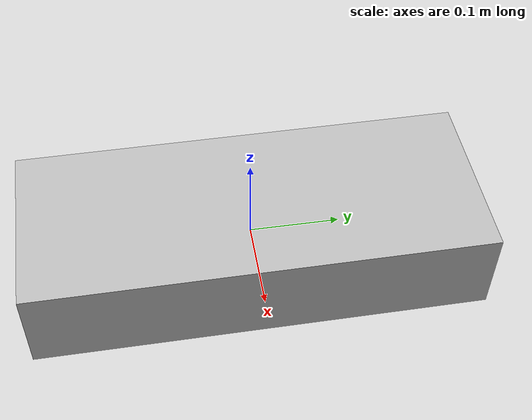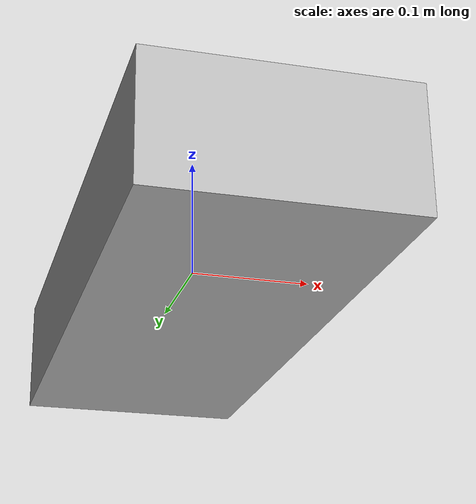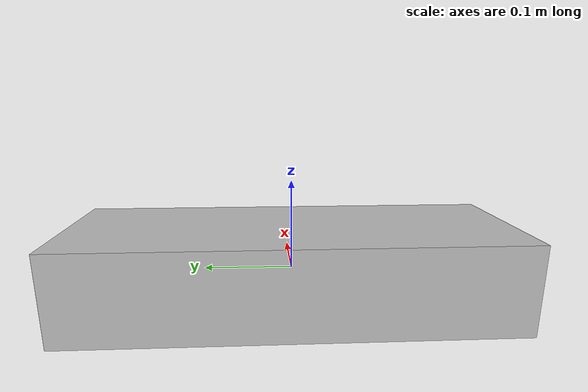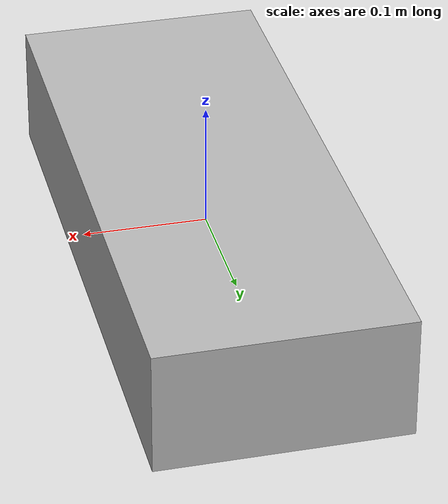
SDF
<?xml version='1.0'?>
<sdf version='1.4'>
  <model name='body'>
    <link name='body'>
      <pose>0 0 0 0 0 0</pose>
      <inertial>
        <mass>1.0</mass>
        <pose>0 0 1 0 0 0</pose>
        <inertia>
          <ixx>5</ixx>
          <iyy>1</iyy>
          <izz>1</izz>
        </inertia>
      </inertial>
      <collision name='collision'>
        <geometry>
          <box>
            <size>.2 .5 .1</size>
          </box>
        </geometry>
      </collision>
      <visual name='visual'>
        <geometry>
          <box>
            <size>.2 .5 .1</size>
          </box>
        </geometry>
      </visual>
    </link>
  </model>
</sdf>
